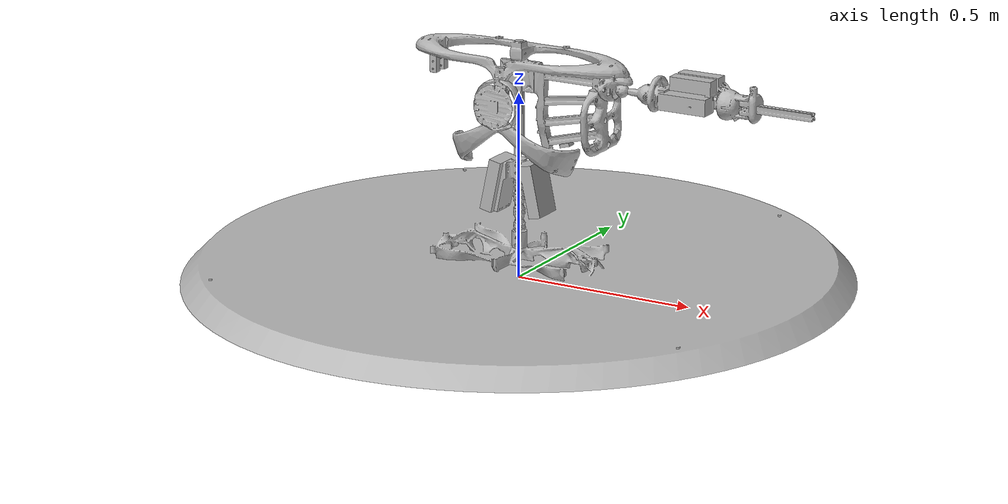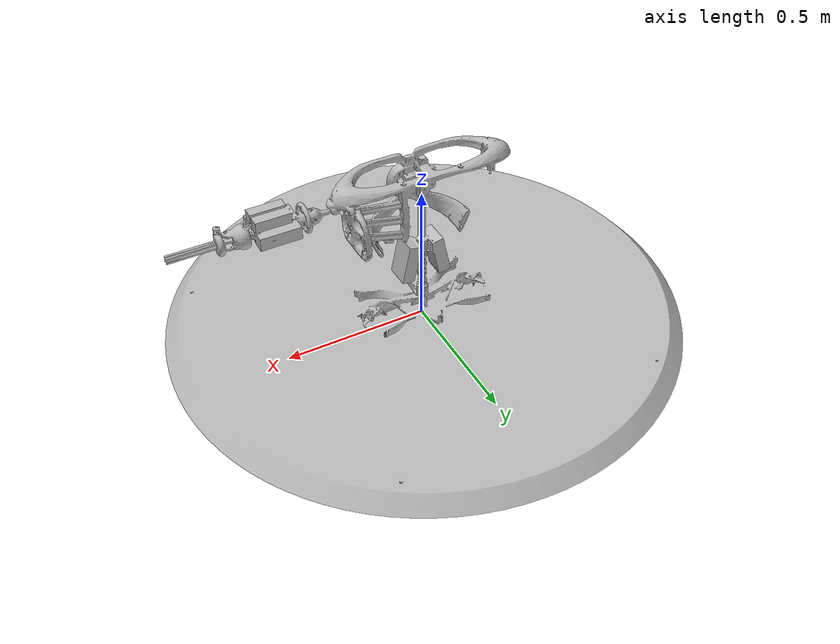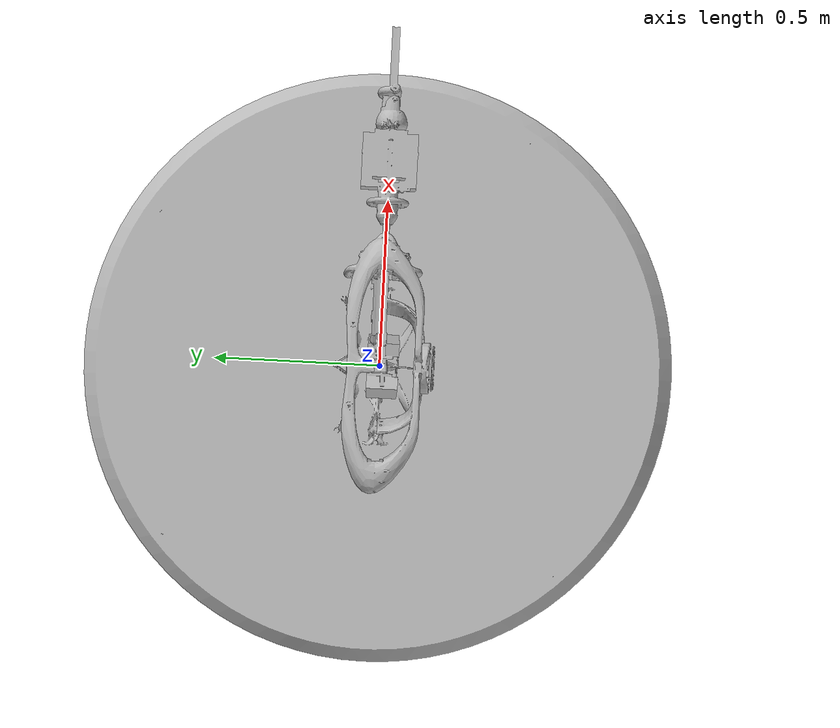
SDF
<?xml version="1.0" ?>
<sdf version="1.6">
	<model name="roboy_xylophone_left_arm_mod1">
		<link name="base">
			<self_collide>false</self_collide>
			<pose frame="">0.0 0.0 0.0 0.0 -0.0 0.0</pose>
			<inertial>
				<pose frame="">0.0 0.0 0.0 0 0 0</pose>
				<mass>1041.2293594077037</mass>
				<inertia>
					<ixx>194.34233377142348</ixx>
					<ixy>0.02954008126913422</ixy>
					<ixz>-0.1448651839771188</ixz>
					<iyy>194.34304191479657</iyy>
					<iyz>0.12760282012592977</iyz>
					<izz>386.9973235859431</izz>
				</inertia>
			</inertial>
			<collision name="base_collision">
				<geometry>
					<mesh>
						<uri>model://roboy_xylophone_left_arm_mod1/meshes/CAD/base.stl</uri>
						<scale>0.001 0.001 0.001</scale>
					</mesh>
				</geometry>
			</collision>
			<visual name="base_visual">
				<geometry>
					<mesh>
						<uri>model://roboy_xylophone_left_arm_mod1/meshes/CAD/base.stl</uri>
						<scale>0.001 0.001 0.001</scale>
					</mesh>
				</geometry>
			</visual>
		</link>
		<link name="lower_arm_left">
			<self_collide>false</self_collide>
			<pose frame="">0.7074785593276005 0.005886251741667762 0.5537529620717708 0.0 -0.0 0.0</pose>
			<inertial>
				<pose frame="">0.0 0.0 0.0 0 0 0</pose>
				<mass>0.1639662034797443</mass>
				<inertia>
					<ixx>0.05034721504021259</ixx>
					<ixy>-0.0006621993367307967</ixy>
					<ixz>-0.0005324601737404497</ixz>
					<iyy>0.13286266410585928</iyy>
					<iyz>-0.06422948881147728</iyz>
					<izz>0.08257147674550085</izz>
				</inertia>
			</inertial>
			<collision name="lower_arm_left_collision">
				<geometry>
					<mesh>
						<uri>model://roboy_xylophone_left_arm_mod1/meshes/CAD/lower_arm_left.stl</uri>
						<scale>0.001 0.001 0.001</scale>
					</mesh>
				</geometry>
			</collision>
			<visual name="lower_arm_left_visual">
				<geometry>
					<mesh>
						<uri>model://roboy_xylophone_left_arm_mod1/meshes/CAD/lower_arm_left.stl</uri>
						<scale>0.001 0.001 0.001</scale>
					</mesh>
				</geometry>
			</visual>
		</link>
		<link name="upper_arm_left">
			<self_collide>false</self_collide>
			<pose frame="">0.49410937559160617 0.002420271200049729 0.5630545724963112 0.0 -0.0 0.0</pose>
			<inertial>
				<pose frame="">0.0 0.0 0.0 0 0 0</pose>
				<mass>1.4066729970235903</mass>
				<inertia>
					<ixx>0.4486374428979241</ixx>
					<ixy>-0.0017035468355952727</ixy>
					<ixz>-0.001934638909202926</ixz>
					<iyy>0.7975932001439735</iyy>
					<iyz>-0.3917077745810474</iyz>
					<izz>0.352867754950354</izz>
				</inertia>
			</inertial>
			<collision name="upper_arm_left_collision">
				<geometry>
					<mesh>
						<uri>model://roboy_xylophone_left_arm_mod1/meshes/CAD/upper_arm_left.stl</uri>
						<scale>0.001 0.001 0.001</scale>
					</mesh>
				</geometry>
			</collision>
			<visual name="upper_arm_left_visual">
				<geometry>
					<mesh>
						<uri>model://roboy_xylophone_left_arm_mod1/meshes/CAD/upper_arm_left.stl</uri>
						<scale>0.001 0.001 0.001</scale>
					</mesh>
				</geometry>
			</visual>
		</link>
		<link name="torso">
			<self_collide>false</self_collide>
			<pose frame="">0.015198108189375828 -0.007175945334814449 0.3965864194624781 0.0 -0.0 0.0</pose>
			<inertial>
				<pose frame="">0.0 0.0 0.0 0 0 0</pose>
				<mass>15.80321284930236</mass>
				<inertia>
					<ixx>2.886226976262021</ixx>
					<ixy>-0.0012761288622997653</ixy>
					<ixz>0.04534177387941487</ixz>
					<iyy>3.1166228699862777</iyy>
					<iyz>-0.12034199282146522</iyz>
					<izz>0.3103078136361685</izz>
				</inertia>
			</inertial>
			<collision name="torso_collision">
				<geometry>
					<mesh>
						<uri>model://roboy_xylophone_left_arm_mod1/meshes/CAD/torso.stl</uri>
						<scale>0.001 0.001 0.001</scale>
					</mesh>
				</geometry>
			</collision>
			<visual name="torso_visual">
				<geometry>
					<mesh>
						<uri>model://roboy_xylophone_left_arm_mod1/meshes/CAD/torso.stl</uri>
						<scale>0.001 0.001 0.001</scale>
					</mesh>
				</geometry>
			</visual>
		</link>
		<link name="sphere_link1">
			<self_collide>false</self_collide>
			<pose frame="">0.30091554581676005 0.0025251779766726646 0.5476527990464143 0.0 -0.0 0.0</pose>
			<inertial>
				<pose frame="">0.0 0.0 0.0 0 0 0</pose>
				<mass>0.046754103129628445</mass>
				<inertia>
					<ixx>0.014028930499989191</ixx>
					<ixy>-3.55268210279209e-05</ixy>
					<ixz>-6.465722109621308e-05</ixz>
					<iyy>0.018262224157543774</iyy>
					<iyz>-0.0077049471985332334</iyz>
					<izz>0.004239863907651701</izz>
				</inertia>
			</inertial>
			<collision name="sphere_link1_collision">
				<geometry>
					<mesh>
						<uri>model://roboy_xylophone_left_arm_mod1/meshes/CAD/sphere_link1.stl</uri>
						<scale>0.001 0.001 0.001</scale>
					</mesh>
				</geometry>
			</collision>
			<visual name="sphere_link1_visual">
				<geometry>
					<mesh>
						<uri>model://roboy_xylophone_left_arm_mod1/meshes/CAD/sphere_link1.stl</uri>
						<scale>0.001 0.001 0.001</scale>
					</mesh>
				</geometry>
			</visual>
		</link>
		<link name="sphere_link2">
			<self_collide>false</self_collide>
			<pose frame="">0.30091554581676017 0.0025251768590857553 0.547652799046415 0.0 -0.0 0.0</pose>
			<inertial>
				<pose frame="">0.0 0.0 0.0 0 0 0</pose>
				<mass>0.031340659211905667</mass>
				<inertia>
					<ixx>0.009402701451181468</ixx>
					<ixy>-2.3814669160705768e-05</ixy>
					<ixz>-4.334162992086414e-05</ixz>
					<iyy>0.012240403492128835</iyy>
					<iyz>-0.005164854167460886</iyz>
					<izz>0.002840800365783859</izz>
				</inertia>
			</inertial>
			<collision name="sphere_link2_collision">
				<geometry>
					<mesh>
						<uri>model://roboy_xylophone_left_arm_mod1/meshes/CAD/sphere_link2.stl</uri>
						<scale>0.001 0.001 0.001</scale>
					</mesh>
				</geometry>
			</collision>
			<visual name="sphere_link2_visual">
				<geometry>
					<mesh>
						<uri>model://roboy_xylophone_left_arm_mod1/meshes/CAD/sphere_link2.stl</uri>
						<scale>0.001 0.001 0.001</scale>
					</mesh>
				</geometry>
			</visual>
		</link>
		<joint name="joint_hip" type="revolute">
			<parent>base</parent>
			<child>torso</child>
			<pose frame="">-0.015198108189375819 0.008698288835840826 -0.3133492459708241 0 0 0</pose>
			<axis>
				<xyz>-2.3609670781633625e-15 -1.1366942706288076e-14 -0.9999999999999987</xyz>
				<limit>
					<lower>-0.2617993877991494</lower>
					<upper>0.2617993877991494</upper>
				</limit>
				<use_parent_model_frame>0</use_parent_model_frame>
			</axis>
		</joint>
		<joint name="elbow_left" type="revolute">
			<parent>upper_arm_left</parent>
			<child>lower_arm_left</child>
			<pose frame="">-0.05744711788316309 -0.008361074877345744 -0.018725163025357646 0 0 0</pose>
			<axis>
				<xyz>4.2119085996717215e-15 -1.2707667579433074e-15 -1.000000000000003</xyz>
				<limit>
					<lower>0.0</lower>
					<upper>1.5707963267948966</upper>
				</limit>
				<use_parent_model_frame>0</use_parent_model_frame>
			</axis>
		</joint>
		<joint name="sphere_axis0" type="revolute">
			<parent>torso</parent>
			<child>sphere_link1</child>
			<pose frame="">7.105427357601002e-17 -1.8873791418627663e-17 0.0 0 0 0</pose>
			<axis>
				<xyz>1.0000000000000007 2.9478004408376324e-15 6.503044630568056e-16</xyz>
				<limit>
					<lower>-3.141592653589793</lower>
					<upper>3.141592653589793</upper>
				</limit>
				<use_parent_model_frame>0</use_parent_model_frame>
			</axis>
		</joint>
		<joint name="sphere_axis1" type="revolute">
			<parent>sphere_link1</parent>
			<child>sphere_link2</child>
			<pose frame="">-1.4210854715202004e-16 1.1175868952495449e-09 -5.684341886080802e-16 0 0 0</pose>
			<axis>
				<xyz>-2.8112945168822607e-15 0.9999999999999994 -6.411863227862025e-15</xyz>
				<limit>
					<lower>-3.141592653589793</lower>
					<upper>3.141592653589793</upper>
				</limit>
				<use_parent_model_frame>0</use_parent_model_frame>
			</axis>
		</joint>
		<joint name="sphere_axis2" type="revolute">
			<parent>sphere_link2</parent>
			<child>upper_arm_left</child>
			<pose frame="">-0.19319382977484634 0.00010490565903583826 -0.015401773449897505 0 0 0</pose>
			<axis>
				<xyz>1.0000000000000027 2.9132096269750165e-15 4.898425415289509e-16</xyz>
				<limit>
					<lower>-3.141592653589793</lower>
					<upper>3.141592653589793</upper>
				</limit>
				<use_parent_model_frame>0</use_parent_model_frame>
			</axis>
		</joint>
		<plugin filename="libmusc_plugin.so" name="musc_plugin">
			<myoMuscle name="motor13">
				<link name="base">
					<viaPoint type="FIXPOINT">-0.19499999851461478 -0.11347765649897372 0.08723717349165262</viaPoint>
				</link>
				<link name="torso">
					<viaPoint type="FIXPOINT">0.12024065640872804 -0.05490491677623366 -0.06975450453399169</viaPoint>
				</link>
			</myoMuscle>
			<myoMuscle name="motor14">
				<link name="base">
					<viaPoint type="FIXPOINT">0.1949999985146147 -0.1134776564989737 0.0872371734916526</viaPoint>
				</link>
				<link name="torso">
					<viaPoint type="FIXPOINT">-0.15183709675472692 -0.05282874336285322 -0.07155699347598792</viaPoint>
				</link>
			</myoMuscle>
			<myoMuscle name="motor15">
				<link name="base">
					<viaPoint type="FIXPOINT">-0.22500000148538477 0.0015223435010262346 0.08723717349165344</viaPoint>
				</link>
				<link name="torso">
					<viaPoint type="FIXPOINT">-0.165281069233455 0.0071784460068836774 -0.08097356453703287</viaPoint>
				</link>
			</myoMuscle>
			<myoMuscle name="motor16">
				<link name="base">
					<viaPoint type="FIXPOINT">0.2250000014853848 0.0015223435010263528 0.08723717349165344</viaPoint>
				</link>
				<link name="torso">
					<viaPoint type="FIXPOINT">0.1348848528547065 0.00717844600688456 -0.0809735645370326</viaPoint>
				</link>
			</myoMuscle>
			<myoMuscle name="motor17">
				<link name="base">
					<viaPoint type="FIXPOINT">-0.19499999851461464 0.11652234350102626 0.08723717349165426</viaPoint>
				</link>
				<link name="torso">
					<viaPoint type="FIXPOINT">0.10325913154072165 0.07434710297653763 -0.09942789904309972</viaPoint>
				</link>
			</myoMuscle>
			<myoMuscle name="motor18">
				<link name="base">
					<viaPoint type="FIXPOINT">0.19499999851461486 0.1165223435010261 0.08723717349165426</viaPoint>
				</link>
				<link name="torso">
					<viaPoint type="FIXPOINT">-0.13063936554906186 0.07575192078770289 -0.10316023574532977</viaPoint>
				</link>
			</myoMuscle>
			<myoMuscle name="motor0">
				<link name="torso">
					<viaPoint type="FIXPOINT">0.2789674376273844 -0.0184778766885068 0.19083235082882566</viaPoint>
				</link>
				<link name="upper_arm_left">
					<viaPoint type="FIXPOINT">-0.09647114289182454 -0.028955066410141523 0.018956893918598325</viaPoint>
				</link>
			</myoMuscle>
			<myoMuscle name="motor1">
				<link name="torso">
					<viaPoint type="FIXPOINT">0.22816816562862838 -0.042784065678938915 0.06322130964625622</viaPoint>
				</link>
				<link name="upper_arm_left">
					<viaPoint type="FIXPOINT">-0.09647114289182454 -0.026537891436425022 -0.042284652564971596</viaPoint>
				</link>
			</myoMuscle>
			<myoMuscle name="motor2">
				<link name="torso">
					<viaPoint type="FIXPOINT">0.2438039780035806 -0.04995105559477545 0.13417499293350615</viaPoint>
				</link>
				<link name="upper_arm_left">
					<viaPoint type="FIXPOINT">-0.09647114289182454 -0.0448950943409638 -0.015401773449896156</viaPoint>
				</link>
			</myoMuscle>
			<myoMuscle name="motor3">
				<link name="torso">
					<viaPoint type="FIXPOINT">0.2655073716575845 -0.04395723129771427 0.16270735082882581</viaPoint>
				</link>
				<link name="upper_arm_left">
					<viaPoint type="FIXPOINT">-0.1129711428918246 0.00010490565903618133 0.00439822655010353</viaPoint>
				</link>
			</myoMuscle>
			<myoMuscle name="motor4">
				<link name="torso">
					<viaPoint type="FIXPOINT">0.2881953945360196 0.0071784460068867045 0.19889432629018744</viaPoint>
				</link>
				<link name="upper_arm_left">
					<viaPoint type="FIXPOINT">-0.09647114289182468 0.00010490565903634008 0.02959822655010356</viaPoint>
				</link>
			</myoMuscle>
			<myoMuscle name="motor8">
				<link name="torso">
					<viaPoint type="FIXPOINT">0.2781715133457512 0.036771931902764954 0.19188477376245844</viaPoint>
				</link>
				<link name="upper_arm_left">
					<viaPoint type="FIXPOINT">-0.1129711428918246 0.00010490565903618133 0.00439822655010353</viaPoint>
				</link>
			</myoMuscle>
			<myoMuscle name="motor5">
				<link name="torso">
					<viaPoint type="FIXPOINT">0.26550737165758415 0.0633594779206885 0.1627073508288251</viaPoint>
				</link>
				<link name="upper_arm_left">
					<viaPoint type="FIXPOINT">-0.09647114289182476 0.029164877728214106 0.01895689391859797</viaPoint>
				</link>
			</myoMuscle>
			<myoMuscle name="motor6">
				<link name="torso">
					<viaPoint type="FIXPOINT">0.24380397800358178 0.05757644014502038 0.13417499293349508</viaPoint>
				</link>
				<link name="upper_arm_left">
					<viaPoint type="FIXPOINT">-0.09647114289182483 0.04510490565903609 -0.015401773449896723</viaPoint>
				</link>
			</myoMuscle>
			<myoMuscle name="motor7">
				<link name="torso">
					<viaPoint type="FIXPOINT">0.228168165628628 0.07074343006085633 0.06322130964625586</viaPoint>
				</link>
				<link name="upper_arm_left">
					<viaPoint type="FIXPOINT">-0.09647114289182468 0.026747702754473433 -0.04228465256492441</viaPoint>
				</link>
			</myoMuscle>
			<myoMuscle name="motor9">
				<link name="upper_arm_left">
					<viaPoint type="FIXPOINT">0.03266361081514134 -0.06427564937854097 -0.009436425974584708</viaPoint>
				</link>
				<link name="lower_arm_left">
					<viaPoint type="FIXPOINT">-0.03244711788316408 -0.013485686674843535 -0.0013251630253581226</viaPoint>
				</link>
			</myoMuscle>
			<myoMuscle name="motor10">
				<link name="upper_arm_left">
					<viaPoint type="FIXPOINT">0.032663610815138994 0.06448546068613198 -0.004617120925203296</viaPoint>
				</link>
				<link name="lower_arm_left">
					<viaPoint type="FIXPOINT">-0.03244711788316423 0.024638925688898677 -0.0013251630253580515</viaPoint>
				</link>
			</myoMuscle>
		</plugin>
	</model>
</sdf>
